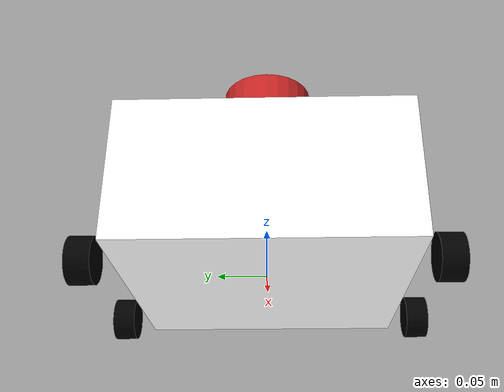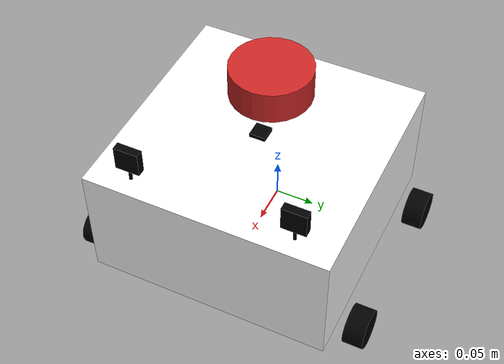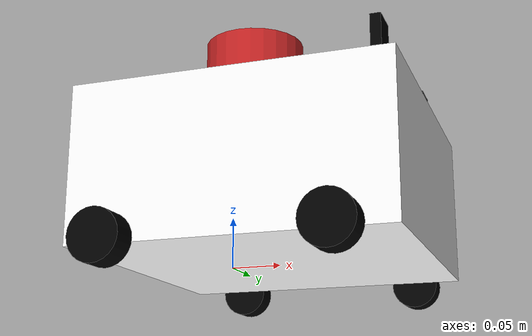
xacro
<?xml version="1.0"?>
<robot xmlns:xacro="http://www.ros.org/wiki/xacro"  name="Mobile Robot">

    <xacro:arg name="use_ros2_control" default="false"/>
    <xacro:arg name="sim_mode" default="true"/>

    <xacro:include filename="$(find mobile_robot)/description/xacro/robot_core.xacro" />

    <!-- Control inclusion based on use_ros2_control argument -->

    <xacro:if value="$(arg use_ros2_control)">
        <xacro:include filename="$(find mobile_robot)/description/xacro/ros2_control.xacro" />
    </xacro:if>
    <xacro:unless value="$(arg use_ros2_control)">
        <xacro:include filename="$(find mobile_robot)/description/xacro/gazebo_control.xacro" />
    </xacro:unless>

</robot>

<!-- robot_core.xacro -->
<robot xmlns:xacro="http://www.ros.org/wiki/xacro"
       xmlns:ignition="http://gazebosim.org/schema">

    <xacro:include filename="$(find mobile_robot)/description/xacro/colors.xacro" />
    <xacro:include filename="$(find mobile_robot)/description/xacro/inertial_macros.xacro" />
    <xacro:include filename="$(find mobile_robot)/description/xacro/lidar.xacro" />
    <xacro:include filename="$(find mobile_robot)/description/xacro/right_camera.xacro" />
    <xacro:include filename="$(find mobile_robot)/description/xacro/left_camera.xacro" />
    <xacro:include filename="$(find mobile_robot)/description/xacro/left_wheels.xacro" />
    <xacro:include filename="$(find mobile_robot)/description/xacro/right_wheels.xacro" />
    <xacro:include filename="$(find mobile_robot)/description/xacro/imu.xacro" />

    <!-- Virtual root link: no geometry, no inertia, sits on the ground plane -->
    <link name="base_footprint"/>

    <!-- base_footprint → base_link (fixed, zero offset) -->
    <joint name="base_footprint_joint" type="fixed">
        <parent link="base_footprint"/>
        <child  link="base_link"/>
        <origin xyz="0 0 0" rpy="0 0 0"/>
    </joint>

    <link name="base_link"/>

    <!-- base_link → chassis -->
    <joint name="chassis_joint" type="fixed">
        <parent link="base_link"/>
        <child  link="chassis"/>
        <origin xyz="-0.1 0 0"/>
    </joint>

    <link name="chassis">
        <visual>
            <origin xyz="0.15 0 0.075"/>
            <geometry>
                <box size="0.3 0.3 0.15"/>
            </geometry>
            <material name="white"/>
        </visual>
        <collision>
            <origin xyz="0.15 0 0.075"/>
            <geometry>
                <box size="0.3 0.3 0.15"/>
            </geometry>
        </collision>
        <xacro:inertial_box mass="0.5" x="0.3" y="0.3" z="0.15">
            <origin xyz="0.15 0 0.075" rpy="0 0 0"/>
        </xacro:inertial_box>
    </link>

    <gazebo reference="chassis">
        <material>Gazebo/White</material>
    </gazebo>

</robot>

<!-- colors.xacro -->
<robot xmlns:xacro="http://www.ros.org/wiki/xacro"  name="Mobile Robot">

    <material name="white">
        <color rgba="1 1 1 1"/>
    </material>

    <material name="red">
        <color rgba="1 0 0 1"/>
    </material>

    <material name="blue">
        <color rgba="0 0 1 1"/>
    </material>

    <material name="black">
        <color rgba="0 0 0 1"/>
    </material>

</robot>

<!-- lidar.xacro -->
<robot xmlns:xacro="http://www.ros.org/wiki/xacro">

    <joint name="laser_joint" type="fixed">
        <parent link="chassis"/>
        <child  link="laser_frame"/>
        <origin xyz="0.122 0 0.212" rpy="0 0 0"/>
    </joint>

    <link name="laser_frame">
        <visual>
            <geometry>
                <cylinder radius="0.05" length="0.04"/>
            </geometry>
        </visual>
        <collision>
            <geometry>
                <cylinder radius="0.05" length="0.04"/>
            </geometry>
        </collision>
        <xacro:inertial_cylinder mass="0.1" length="0.04" radius="0.05">
            <origin xyz="0 0 0" rpy="0 0 0"/>
        </xacro:inertial_cylinder>
    </link>

    <gazebo reference="laser_frame">
        <material>Gazebo/Red</material>

        <sensor name="laser" type="gpu_lidar">
            <pose>0 0 0 0 0 0</pose>
            <update_rate>10</update_rate>
            <always_on>1</always_on>
            <visualize>false</visualize>
            <topic>scan_2d</topic>
            <frame_id>laser_frame</frame_id>
            <lidar>
                <scan>
                    <horizontal>
                        <samples>690</samples>
                        <resolution>1</resolution>
                        <min_angle>-1.308997</min_angle>
                        <max_angle>1.308997</max_angle>
                    </horizontal>
                    <vertical>
                        <samples>32</samples>
                        <resolution>1</resolution>
                        <min_angle>0.0</min_angle>
                        <max_angle>1.047198</max_angle>
                    </vertical>
                </scan>
                <range>
                    <min>0.3</min>
                    <max>12.0</max>
                    <resolution>0.01</resolution>
                </range>
            </lidar>
        </sensor>
    </gazebo>

</robot>

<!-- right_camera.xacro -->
<robot xmlns:xacro="http://www.ros.org/wiki/xacro" >

    <joint name="right_camera_joint" type="fixed">
        <parent link="chassis"/>
        <child link="right_camera_link"/>
        <origin xyz="0.276 0.1 0.181" rpy="0 0 0"/>
    </joint>

    <link name="right_camera_link">
        <visual>
            <geometry>
                <box size="0.010 0.03 0.03"/>
            </geometry>
            <material name="black"/>
        </visual>
        <visual>
            <origin xyz="0 0 -0.05"/>
            <geometry>
                <cylinder radius="0.002" length="0.1"/>
            </geometry>
            <material name="black"/>
        </visual>
    </link>

    <joint name="right_camera_optical_joint" type="fixed">
        <parent link="right_camera_link"/>
        <child link="right_camera_link_optical"/>
        <origin xyz="0 0 0" rpy="${-pi/2} 0 ${-pi/2}"/>
    </joint>

    <link name="right_camera_link_optical"></link>

    <gazebo reference="right_camera_link">
        <material>Gazebo/Black</material>

        <sensor name="right_camera" type="camera">
            <pose> 0 0 0 0 0 0 </pose>
            <visualize>true</visualize>
            <update_rate>10</update_rate>
            <camera>
                <horizontal_fov>1.089</horizontal_fov>
                <image>
                    <format>R8G8B8</format>
                    <width>640</width>
                    <height>480</height>
                </image>
                <clip>
                    <near>0.01</near>
                    <far>5.0</far>
                </clip>
            </camera>
            <topic>right_camera/image</topic>
            <frame_name>right_camera_link_optical</frame_name>
        </sensor>
    </gazebo>

</robot>

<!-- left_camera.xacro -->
<robot xmlns:xacro="http://www.ros.org/wiki/xacro" >

    <joint name="left_camera_joint" type="fixed">
        <parent link="chassis"/>
        <child link="left_camera_link"/>
        <origin xyz="0.276 -0.1 0.181" rpy="0 0 0"/>
    </joint>

    <link name="left_camera_link">
        <visual>
            <geometry>
                <box size="0.010 0.03 0.03"/>
            </geometry>
            <material name="black"/>
        </visual>
        <visual>
            <origin xyz="0 0 -0.05"/>
            <geometry>
                <cylinder radius="0.002" length="0.1"/>
            </geometry>
            <material name="black"/>
        </visual>
    </link>

    <joint name="left_camera_optical_joint" type="fixed">
        <parent link="left_camera_link"/>
        <child link="left_camera_link_optical"/>
        <origin xyz="0 0 0" rpy="${-pi/2} 0 ${-pi/2}"/>
    </joint>

    <link name="left_camera_link_optical"></link>

    <gazebo reference="left_camera_link">
        <material>Gazebo/Black</material>

        <sensor name="left_camera" type="camera">
            <pose> 0 0 0 0 0 0 </pose>
            <visualize>true</visualize>
            <update_rate>10</update_rate>
            <camera>
                <horizontal_fov>1.089</horizontal_fov>
                <image>
                    <format>R8G8B8</format>
                    <width>640</width>
                    <height>480</height>
                </image>
                <clip>
                    <near>0.01</near>
                    <far>5.0</far>
                </clip>
            </camera>
            <topic>left_camera/image</topic>
            <frame_name>left_camera_link_optical</frame_name>
        </sensor>
    </gazebo>

</robot>

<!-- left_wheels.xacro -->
<robot xmlns:xacro="http://www.ros.org/wiki/xacro"
       xmlns:ignition="http://gazebosim.org/schema">

    <xacro:include filename="$(find mobile_robot)/description/xacro/inertial_macros.xacro" />

    <!-- Front left wheel -->
    <joint name="front_left_wheel_joint" type="continuous">
        <parent link="chassis" />
        <child link="front_left_wheel" />
        <origin xyz="0.25 0.175 0" rpy="-${pi/2} 0 0"/>
        <axis xyz="0 0 1" />
    </joint>

    <link name="front_left_wheel">
        <visual>
            <geometry>
                <cylinder radius="0.024" length="0.025" />
            </geometry>
            <material name="black" />
        </visual>
        <collision>
            <geometry>
                <cylinder radius="0.024" length="0.025" />
            </geometry>
        </collision>
        <xacro:inertial_cylinder mass="0.1" length="0.025" radius="0.024">
            <origin xyz="0 0 0" rpy="0 0 0"/>
        </xacro:inertial_cylinder>
    </link>

    <!-- Rear left wheel -->
    <joint name="rear_left_wheel_joint" type="continuous">
        <parent link="chassis" />
        <child link="rear_left_wheel" />
        <origin xyz="0.05 0.175 0" rpy="-${pi/2} 0 0"/>
        <axis xyz="0 0 1" />
    </joint>

    <link name="rear_left_wheel">
        <visual>
            <geometry>
                <cylinder radius="0.024" length="0.025" />
            </geometry>
            <material name="black" />
        </visual>
        <collision>
            <geometry>
                <cylinder radius="0.024" length="0.025" />
            </geometry>
        </collision>
        <xacro:inertial_cylinder mass="0.1" length="0.025" radius="0.024">
            <origin xyz="0 0 0" rpy="0 0 0"/>
        </xacro:inertial_cylinder>
    </link>

    <gazebo reference="front_left_wheel">
        <material>Gazebo/Black</material>
        <collision>
            <surface>
                <friction>
                    <ode>
                        <mu>1.0</mu>
                        <mu2>0.02</mu2>
                        <fdir1 ignition:expressed_in="chassis">0.70710678 0.70710678 0</fdir1>
                    </ode>
                </friction>
                <contact>
                    <ode>
                        <min_depth>0.001</min_depth>
                    </ode>
                </contact>
            </surface>
        </collision>
    </gazebo>

    <gazebo reference="rear_left_wheel">
        <material>Gazebo/Black</material>
        <collision>
            <surface>
                <friction>
                    <ode>
                        <mu>1.0</mu>
                        <mu2>0.02</mu2>
                        <fdir1 ignition:expressed_in="chassis">0.70710678 -0.70710678 0</fdir1>
                    </ode>
                </friction>
                <contact>
                    <ode>
                        <min_depth>0.001</min_depth>
                    </ode>
                </contact>
            </surface>
        </collision>
    </gazebo>

</robot>

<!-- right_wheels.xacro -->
<robot xmlns:xacro="http://www.ros.org/wiki/xacro"
       xmlns:ignition="http://gazebosim.org/schema">

    <xacro:include filename="$(find mobile_robot)/description/xacro/inertial_macros.xacro" />

    <!-- Front right wheel -->
    <joint name="front_right_wheel_joint" type="continuous">
        <parent link="chassis" />
        <child link="front_right_wheel" />
        <origin xyz="0.25 -0.175 0" rpy="${pi/2} 0 0"/>
        <axis xyz="0 0 -1" />
    </joint>

    <link name="front_right_wheel">
        <visual>
            <geometry>
                <cylinder radius="0.024" length="0.025" />
            </geometry>
            <material name="black" />
        </visual>
        <collision>
            <geometry>
                <cylinder radius="0.024" length="0.025" />
            </geometry>
        </collision>
        <xacro:inertial_cylinder mass="0.1" length="0.025" radius="0.024">
            <origin xyz="0 0 0" rpy="0 0 0"/>
        </xacro:inertial_cylinder>
    </link>

    <!-- Rear right wheel -->
    <joint name="rear_right_wheel_joint" type="continuous">
        <parent link="chassis" />
        <child link="rear_right_wheel" />
        <origin xyz="0.05 -0.175 0" rpy="${pi/2} 0 0"/>
        <axis xyz="0 0 -1" />
    </joint>

    <link name="rear_right_wheel">
        <visual>
            <geometry>
                <cylinder radius="0.024" length="0.025" />
            </geometry>
            <material name="black" />
        </visual>
        <collision>
            <geometry>
                <cylinder radius="0.024" length="0.025" />
            </geometry>
        </collision>
        <xacro:inertial_cylinder mass="0.1" length="0.025" radius="0.024">
            <origin xyz="0 0 0" rpy="0 0 0"/>
        </xacro:inertial_cylinder>
    </link>

    <gazebo reference="front_right_wheel">
        <material>Gazebo/Black</material>
        <collision>
            <surface>
                <friction>
                    <ode>
                        <mu>1.0</mu>
                        <mu2>0.02</mu2>
                        <fdir1 ignition:expressed_in="chassis">0.70710678 -0.70710678 0</fdir1>
                    </ode>
                </friction>
                <contact>
                    <ode>
                        <min_depth>0.001</min_depth>
                    </ode>
                </contact>
            </surface>
        </collision>
    </gazebo>

    <gazebo reference="rear_right_wheel">
        <material>Gazebo/Black</material>
        <collision>
            <surface>
                <friction>
                    <ode>
                        <mu>1.0</mu>
                        <mu2>0.02</mu2>
                        <fdir1 ignition:expressed_in="chassis">0.70710678 0.70710678 0</fdir1>
                    </ode>
                </friction>
                <contact>
                    <ode>
                        <min_depth>0.001</min_depth>
                    </ode>
                </contact>
            </surface>
        </collision>
    </gazebo>

</robot>

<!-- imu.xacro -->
<robot xmlns:xacro="http://www.ros.org/wiki/xacro">

    <!-- IMU joint: fixed to chassis centre-top -->
    <joint name="imu_joint" type="fixed">
        <parent link="chassis"/>
        <child  link="imu_link"/>
        <origin xyz="0.15 0 0.15" rpy="0 0 0"/>
    </joint>

    <link name="imu_link">
        <visual>
            <geometry>
                <!-- Small black box representing the IMU chip -->
                <box size="0.02 0.02 0.01"/>
            </geometry>
            <material name="black"/>
        </visual>
        <collision>
            <geometry>
                <box size="0.02 0.02 0.01"/>
            </geometry>
        </collision>
        <inertial>
            <mass value="0.01"/>
            <origin xyz="0 0 0" rpy="0 0 0"/>
            <inertia
                ixx="4.17e-7"  ixy="0" ixz="0"
                                iyy="4.17e-7" iyz="0"
                                             izz="6.67e-7"/>
        </inertial>
    </link>

    <gazebo reference="imu_link">
        <sensor name="imu_sensor" type="imu">
            <always_on>1</always_on>
            <update_rate>100</update_rate>
            <visualize>false</visualize>
            <topic>imu</topic>
            <frame_id>imu_link</frame_id>
            <imu>
                <angular_velocity>
                    <x>
                        <noise type="gaussian">
                            <mean>0.0</mean>
                            <stddev>0.005</stddev>
                        </noise>
                    </x>
                    <y>
                        <noise type="gaussian">
                            <mean>0.0</mean>
                            <stddev>0.005</stddev>
                        </noise>
                    </y>
                    <z>
                        <noise type="gaussian">
                            <mean>0.0</mean>
                            <stddev>0.005</stddev>
                        </noise>
                    </z>
                </angular_velocity>
                <linear_acceleration>
                    <x>
                        <noise type="gaussian">
                            <mean>0.0</mean>
                            <stddev>0.01</stddev>
                        </noise>
                    </x>
                    <y>
                        <noise type="gaussian">
                            <mean>0.0</mean>
                            <stddev>0.01</stddev>
                        </noise>
                    </y>
                    <z>
                        <noise type="gaussian">
                            <mean>0.0</mean>
                            <stddev>0.01</stddev>
                        </noise>
                    </z>
                </linear_acceleration>
            </imu>
        </sensor>
    </gazebo>

</robot>
